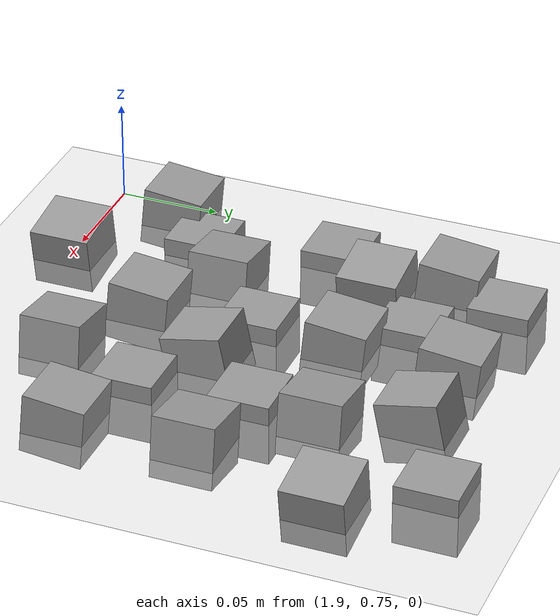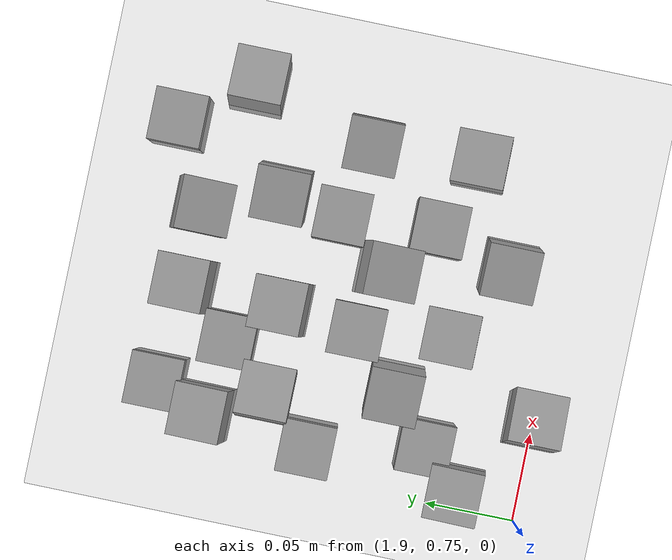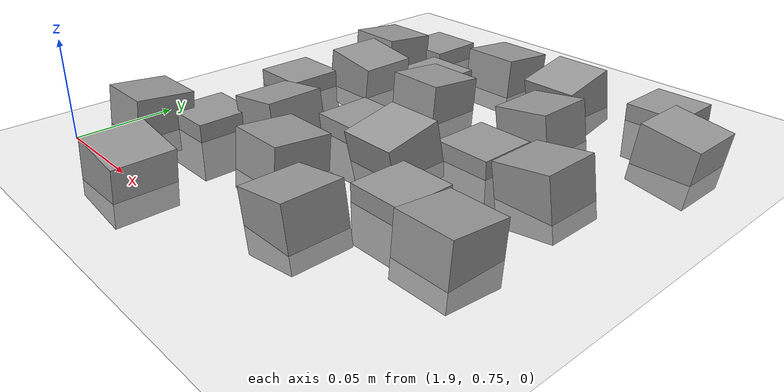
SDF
<sdf version="1.7">
 <world name="default">
  <model name="ground_plane">
   <static>1</static>
   <link name="link">
    <collision name="collision">
     <geometry><plane><normal>0 0 1</normal><size>100 100</size></plane></geometry>
     <surface><friction><ode><mu>100</mu><mu2>50</mu2></ode></friction></surface>
    </collision>
    <visual name="visual">
     <cast_shadows>0</cast_shadows>
     <geometry><plane><normal>0 0 1</normal><size>100 100</size></plane></geometry>
     <material>
      <script><uri>file://media/materials/scripts/gazebo.material</uri><name>Gazebo/Grey</name></script>
     </material>
    </visual>
   </link>
  </model>
  <model name="stone_road_5">
   <link name="link_0_clone_13">
    <inertial>
     <mass>1</mass>
     <inertia>
      <ixx>0.166667</ixx>
      <ixy>0</ixy>
      <ixz>0</ixz>
      <iyy>0.166667</iyy>
      <iyz>0</iyz>
      <izz>0.166667</izz>
     </inertia>
    </inertial>
    <pose>0.107601 -0.134881 0.003778 0.2 -0 0</pose>
    <kinematic>1</kinematic>
    <visual name="visual">
     <geometry><box><size>0.03 0.03 0.03</size></box></geometry>
     <material>
      <lighting>1</lighting>
      <script><uri>file://media/materials/scripts/gazebo.material</uri><name>Gazebo/Grey</name></script>
      <shader type="pixel"><normal_map>__default__</normal_map></shader>
      <ambient>0.3 0.3 0.3 1</ambient>
      <diffuse>0.7 0.7 0.7 1</diffuse>
      <specular>0.01 0.01 0.01 1</specular>
      <emissive>0 0 0 1</emissive>
     </material>
    </visual>
    <collision name="collision">
     <geometry><box><size>0.03 0.03 0.03</size></box></geometry>
     <surface>
      <friction>
       <ode><mu>1</mu><mu2>1</mu2><fdir1>0 0 0</fdir1><slip1>0</slip1><slip2>0</slip2></ode>
       <torsional>
        <coefficient>1</coefficient>
        <patch_radius>0</patch_radius>
        <surface_radius>0</surface_radius>
        <use_patch_radius>1</use_patch_radius>
        <ode><slip>0</slip></ode>
       </torsional>
      </friction>
      <bounce><restitution_coefficient>0</restitution_coefficient><threshold>1e+06</threshold></bounce>
      <contact>
       <collide_without_contact>0</collide_without_contact>
       <collide_without_contact_bitmask>1</collide_without_contact_bitmask>
       <collide_bitmask>1</collide_bitmask>
       <ode>
        <soft_cfm>0</soft_cfm>
        <soft_erp>0.2</soft_erp>
        <kp>1e+13</kp>
        <kd>1</kd>
        <max_vel>0.01</max_vel>
        <min_depth>0</min_depth>
       </ode>
       <bullet>
        <split_impulse>1</split_impulse>
        <split_impulse_penetration_threshold>-0.01</split_impulse_penetration_threshold>
        <soft_cfm>0</soft_cfm>
        <soft_erp>0.2</soft_erp>
        <kp>1e+13</kp>
        <kd>1</kd>
       </bullet>
      </contact>
     </surface>
    </collision>
   </link>
   <link name="link_0_clone_2_clone_0">
    <inertial>
     <mass>1</mass>
     <inertia>
      <ixx>0.166667</ixx>
      <ixy>0</ixy>
      <ixz>0</ixz>
      <iyy>0.166667</iyy>
      <iyz>0</iyz>
      <izz>0.166667</izz>
     </inertia>
    </inertial>
    <pose>0.026852 -0.0813 0.003778 0 0.15 0</pose>
    <kinematic>1</kinematic>
    <visual name="visual">
     <geometry><box><size>0.03 0.03 0.03</size></box></geometry>
     <material>
      <lighting>1</lighting>
      <script><uri>file://media/materials/scripts/gazebo.material</uri><name>Gazebo/Grey</name></script>
      <shader type="pixel"><normal_map>__default__</normal_map></shader>
      <ambient>0.3 0.3 0.3 1</ambient>
      <diffuse>0.7 0.7 0.7 1</diffuse>
      <specular>0.01 0.01 0.01 1</specular>
      <emissive>0 0 0 1</emissive>
     </material>
    </visual>
    <collision name="collision">
     <geometry><box><size>0.03 0.03 0.03</size></box></geometry>
     <surface>
      <friction>
       <ode><mu>1</mu><mu2>1</mu2><fdir1>0 0 0</fdir1><slip1>0</slip1><slip2>0</slip2></ode>
       <torsional>
        <coefficient>1</coefficient>
        <patch_radius>0</patch_radius>
        <surface_radius>0</surface_radius>
        <use_patch_radius>1</use_patch_radius>
        <ode><slip>0</slip></ode>
       </torsional>
      </friction>
      <bounce><restitution_coefficient>0</restitution_coefficient><threshold>1e+06</threshold></bounce>
      <contact>
       <collide_without_contact>0</collide_without_contact>
       <collide_without_contact_bitmask>1</collide_without_contact_bitmask>
       <collide_bitmask>1</collide_bitmask>
       <ode>
        <soft_cfm>0</soft_cfm>
        <soft_erp>0.2</soft_erp>
        <kp>1e+13</kp>
        <kd>1</kd>
        <max_vel>0.01</max_vel>
        <min_depth>0</min_depth>
       </ode>
       <bullet>
        <split_impulse>1</split_impulse>
        <split_impulse_penetration_threshold>-0.01</split_impulse_penetration_threshold>
        <soft_cfm>0</soft_cfm>
        <soft_erp>0.2</soft_erp>
        <kp>1e+13</kp>
        <kd>1</kd>
       </bullet>
      </contact>
     </surface>
    </collision>
   </link>
   <link name="link_0_clone_2_clone_2_clone_13_clone_clone_10">
    <inertial>
     <mass>1</mass>
     <inertia>
      <ixx>0.166667</ixx>
      <ixy>0</ixy>
      <ixz>0</ixz>
      <iyy>0.166667</iyy>
      <iyz>0</iyz>
      <izz>0.166667</izz>
     </inertia>
    </inertial>
    <pose>-0.006825 -0.196489 0.003778 -0.1 0 0</pose>
    <kinematic>1</kinematic>
    <visual name="visual">
     <geometry><box><size>0.03 0.03 0.03</size></box></geometry>
     <material>
      <lighting>1</lighting>
      <script><uri>file://media/materials/scripts/gazebo.material</uri><name>Gazebo/Grey</name></script>
      <shader type="pixel"><normal_map>__default__</normal_map></shader>
      <ambient>0.3 0.3 0.3 1</ambient>
      <diffuse>0.7 0.7 0.7 1</diffuse>
      <specular>0.01 0.01 0.01 1</specular>
      <emissive>0 0 0 1</emissive>
     </material>
    </visual>
    <collision name="collision">
     <geometry><box><size>0.03 0.03 0.03</size></box></geometry>
     <surface>
      <friction>
       <ode><mu>1</mu><mu2>1</mu2><fdir1>0 0 0</fdir1><slip1>0</slip1><slip2>0</slip2></ode>
       <torsional>
        <coefficient>1</coefficient>
        <patch_radius>0</patch_radius>
        <surface_radius>0</surface_radius>
        <use_patch_radius>1</use_patch_radius>
        <ode><slip>0</slip></ode>
       </torsional>
      </friction>
      <bounce><restitution_coefficient>0</restitution_coefficient><threshold>1e+06</threshold></bounce>
      <contact>
       <collide_without_contact>0</collide_without_contact>
       <collide_without_contact_bitmask>1</collide_without_contact_bitmask>
       <collide_bitmask>1</collide_bitmask>
       <ode>
        <soft_cfm>0</soft_cfm>
        <soft_erp>0.2</soft_erp>
        <kp>1e+13</kp>
        <kd>1</kd>
        <max_vel>0.01</max_vel>
        <min_depth>0</min_depth>
       </ode>
       <bullet>
        <split_impulse>1</split_impulse>
        <split_impulse_penetration_threshold>-0.01</split_impulse_penetration_threshold>
        <soft_cfm>0</soft_cfm>
        <soft_erp>0.2</soft_erp>
        <kp>1e+13</kp>
        <kd>1</kd>
       </bullet>
      </contact>
     </surface>
    </collision>
   </link>
   <link name="link_0_clone_2_clone_2_clone_13_clone_clone_11">
    <inertial>
     <mass>1</mass>
     <inertia>
      <ixx>0.166667</ixx>
      <ixy>0</ixy>
      <ixz>0</ixz>
      <iyy>0.166667</iyy>
      <iyz>0</iyz>
      <izz>0.166667</izz>
     </inertia>
    </inertial>
    <pose>0.178889 -0.173779 0.003778 -0.1 0 0</pose>
    <kinematic>1</kinematic>
    <visual name="visual">
     <geometry><box><size>0.03 0.03 0.03</size></box></geometry>
     <material>
      <lighting>1</lighting>
      <script><uri>file://media/materials/scripts/gazebo.material</uri><name>Gazebo/Grey</name></script>
      <shader type="pixel"><normal_map>__default__</normal_map></shader>
      <ambient>0.3 0.3 0.3 1</ambient>
      <diffuse>0.7 0.7 0.7 1</diffuse>
      <specular>0.01 0.01 0.01 1</specular>
      <emissive>0 0 0 1</emissive>
     </material>
    </visual>
    <collision name="collision">
     <geometry><box><size>0.03 0.03 0.03</size></box></geometry>
     <surface>
      <friction>
       <ode><mu>1</mu><mu2>1</mu2><fdir1>0 0 0</fdir1><slip1>0</slip1><slip2>0</slip2></ode>
       <torsional>
        <coefficient>1</coefficient>
        <patch_radius>0</patch_radius>
        <surface_radius>0</surface_radius>
        <use_patch_radius>1</use_patch_radius>
        <ode><slip>0</slip></ode>
       </torsional>
      </friction>
      <bounce><restitution_coefficient>0</restitution_coefficient><threshold>1e+06</threshold></bounce>
      <contact>
       <collide_without_contact>0</collide_without_contact>
       <collide_without_contact_bitmask>1</collide_without_contact_bitmask>
       <collide_bitmask>1</collide_bitmask>
       <ode>
        <soft_cfm>0</soft_cfm>
        <soft_erp>0.2</soft_erp>
        <kp>1e+13</kp>
        <kd>1</kd>
        <max_vel>0.01</max_vel>
        <min_depth>0</min_depth>
       </ode>
       <bullet>
        <split_impulse>1</split_impulse>
        <split_impulse_penetration_threshold>-0.01</split_impulse_penetration_threshold>
        <soft_cfm>0</soft_cfm>
        <soft_erp>0.2</soft_erp>
        <kp>1e+13</kp>
        <kd>1</kd>
       </bullet>
      </contact>
     </surface>
    </collision>
   </link>
   <link name="link_0_clone_2_clone_2_clone_13_clone_clone_12">
    <inertial>
     <mass>1</mass>
     <inertia>
      <ixx>0.166667</ixx>
      <ixy>0</ixy>
      <ixz>0</ixz>
      <iyy>0.166667</iyy>
      <iyz>0</iyz>
      <izz>0.166667</izz>
     </inertia>
    </inertial>
    <pose>0.078701 -0.177208 0.003778 -0.1 0 0</pose>
    <kinematic>1</kinematic>
    <visual name="visual">
     <geometry><box><size>0.03 0.03 0.03</size></box></geometry>
     <material>
      <lighting>1</lighting>
      <script><uri>file://media/materials/scripts/gazebo.material</uri><name>Gazebo/Grey</name></script>
      <shader type="pixel"><normal_map>__default__</normal_map></shader>
      <ambient>0.3 0.3 0.3 1</ambient>
      <diffuse>0.7 0.7 0.7 1</diffuse>
      <specular>0.01 0.01 0.01 1</specular>
      <emissive>0 0 0 1</emissive>
     </material>
    </visual>
    <collision name="collision">
     <geometry><box><size>0.03 0.03 0.03</size></box></geometry>
     <surface>
      <friction>
       <ode><mu>1</mu><mu2>1</mu2><fdir1>0 0 0</fdir1><slip1>0</slip1><slip2>0</slip2></ode>
       <torsional>
        <coefficient>1</coefficient>
        <patch_radius>0</patch_radius>
        <surface_radius>0</surface_radius>
        <use_patch_radius>1</use_patch_radius>
        <ode><slip>0</slip></ode>
       </torsional>
      </friction>
      <bounce><restitution_coefficient>0</restitution_coefficient><threshold>1e+06</threshold></bounce>
      <contact>
       <collide_without_contact>0</collide_without_contact>
       <collide_without_contact_bitmask>1</collide_without_contact_bitmask>
       <collide_bitmask>1</collide_bitmask>
       <ode>
        <soft_cfm>0</soft_cfm>
        <soft_erp>0.2</soft_erp>
        <kp>1e+13</kp>
        <kd>1</kd>
        <max_vel>0.01</max_vel>
        <min_depth>0</min_depth>
       </ode>
       <bullet>
        <split_impulse>1</split_impulse>
        <split_impulse_penetration_threshold>-0.01</split_impulse_penetration_threshold>
        <soft_cfm>0</soft_cfm>
        <soft_erp>0.2</soft_erp>
        <kp>1e+13</kp>
        <kd>1</kd>
       </bullet>
      </contact>
     </surface>
    </collision>
   </link>
   <link name="link_0_clone_2_clone_2_clone_13_clone_clone_16_clone_13">
    <inertial>
     <mass>1</mass>
     <inertia>
      <ixx>0.166667</ixx>
      <ixy>0</ixy>
      <ixz>0</ixz>
      <iyy>0.166667</iyy>
      <iyz>0</iyz>
      <izz>0.166667</izz>
     </inertia>
    </inertial>
    <pose>0.168013 -0.00203 -0.006222 0 -0 0</pose>
    <kinematic>1</kinematic>
    <visual name="visual">
     <geometry><box><size>0.03 0.03 0.03</size></box></geometry>
     <material>
      <lighting>1</lighting>
      <script><uri>file://media/materials/scripts/gazebo.material</uri><name>Gazebo/Grey</name></script>
      <shader type="pixel"><normal_map>__default__</normal_map></shader>
      <ambient>0.3 0.3 0.3 1</ambient>
      <diffuse>0.7 0.7 0.7 1</diffuse>
      <specular>0.01 0.01 0.01 1</specular>
      <emissive>0 0 0 1</emissive>
     </material>
    </visual>
    <collision name="collision">
     <geometry><box><size>0.03 0.03 0.03</size></box></geometry>
     <surface>
      <friction>
       <ode><mu>1</mu><mu2>1</mu2><fdir1>0 0 0</fdir1><slip1>0</slip1><slip2>0</slip2></ode>
       <torsional>
        <coefficient>1</coefficient>
        <patch_radius>0</patch_radius>
        <surface_radius>0</surface_radius>
        <use_patch_radius>1</use_patch_radius>
        <ode><slip>0</slip></ode>
       </torsional>
      </friction>
      <bounce><restitution_coefficient>0</restitution_coefficient><threshold>1e+06</threshold></bounce>
      <contact>
       <collide_without_contact>0</collide_without_contact>
       <collide_without_contact_bitmask>1</collide_without_contact_bitmask>
       <collide_bitmask>1</collide_bitmask>
       <ode>
        <soft_cfm>0</soft_cfm>
        <soft_erp>0.2</soft_erp>
        <kp>1e+13</kp>
        <kd>1</kd>
        <max_vel>0.01</max_vel>
        <min_depth>0</min_depth>
       </ode>
       <bullet>
        <split_impulse>1</split_impulse>
        <split_impulse_penetration_threshold>-0.01</split_impulse_penetration_threshold>
        <soft_cfm>0</soft_cfm>
        <soft_erp>0.2</soft_erp>
        <kp>1e+13</kp>
        <kd>1</kd>
       </bullet>
      </contact>
     </surface>
    </collision>
   </link>
   <link name="link_0_clone_2_clone_2_clone_13_clone_clone_16_clone_14">
    <inertial>
     <mass>1</mass>
     <inertia>
      <ixx>0.166667</ixx>
      <ixy>0</ixy>
      <ixz>0</ixz>
      <iyy>0.166667</iyy>
      <iyz>0</iyz>
      <izz>0.166667</izz>
     </inertia>
    </inertial>
    <pose>0.051911 -0.054424 -0.006222 0 -0 0</pose>
    <kinematic>1</kinematic>
    <visual name="visual">
     <geometry><box><size>0.03 0.03 0.03</size></box></geometry>
     <material>
      <lighting>1</lighting>
      <script><uri>file://media/materials/scripts/gazebo.material</uri><name>Gazebo/Grey</name></script>
      <shader type="pixel"><normal_map>__default__</normal_map></shader>
      <ambient>0.3 0.3 0.3 1</ambient>
      <diffuse>0.7 0.7 0.7 1</diffuse>
      <specular>0.01 0.01 0.01 1</specular>
      <emissive>0 0 0 1</emissive>
     </material>
    </visual>
    <collision name="collision">
     <geometry><box><size>0.03 0.03 0.03</size></box></geometry>
     <surface>
      <friction>
       <ode><mu>1</mu><mu2>1</mu2><fdir1>0 0 0</fdir1><slip1>0</slip1><slip2>0</slip2></ode>
       <torsional>
        <coefficient>1</coefficient>
        <patch_radius>0</patch_radius>
        <surface_radius>0</surface_radius>
        <use_patch_radius>1</use_patch_radius>
        <ode><slip>0</slip></ode>
       </torsional>
      </friction>
      <bounce><restitution_coefficient>0</restitution_coefficient><threshold>1e+06</threshold></bounce>
      <contact>
       <collide_without_contact>0</collide_without_contact>
       <collide_without_contact_bitmask>1</collide_without_contact_bitmask>
       <collide_bitmask>1</collide_bitmask>
       <ode>
        <soft_cfm>0</soft_cfm>
        <soft_erp>0.2</soft_erp>
        <kp>1e+13</kp>
        <kd>1</kd>
        <max_vel>0.01</max_vel>
        <min_depth>0</min_depth>
       </ode>
       <bullet>
        <split_impulse>1</split_impulse>
        <split_impulse_penetration_threshold>-0.01</split_impulse_penetration_threshold>
        <soft_cfm>0</soft_cfm>
        <soft_erp>0.2</soft_erp>
        <kp>1e+13</kp>
        <kd>1</kd>
       </bullet>
      </contact>
     </surface>
    </collision>
   </link>
   <link name="link_0_clone_2_clone_2_clone_13_clone_clone_16_clone_15">
    <inertial>
     <mass>1</mass>
     <inertia>
      <ixx>0.166667</ixx>
      <ixy>0</ixy>
      <ixz>0</ixz>
      <iyy>0.166667</iyy>
      <iyz>0</iyz>
      <izz>0.166667</izz>
     </inertia>
    </inertial>
    <pose>0.133032 -0.103459 -0.006222 0 -0 0</pose>
    <kinematic>1</kinematic>
    <visual name="visual">
     <geometry><box><size>0.03 0.03 0.03</size></box></geometry>
     <material>
      <lighting>1</lighting>
      <script><uri>file://media/materials/scripts/gazebo.material</uri><name>Gazebo/Grey</name></script>
      <shader type="pixel"><normal_map>__default__</normal_map></shader>
      <ambient>0.3 0.3 0.3 1</ambient>
      <diffuse>0.7 0.7 0.7 1</diffuse>
      <specular>0.01 0.01 0.01 1</specular>
      <emissive>0 0 0 1</emissive>
     </material>
    </visual>
    <collision name="collision">
     <geometry><box><size>0.03 0.03 0.03</size></box></geometry>
     <surface>
      <friction>
       <ode><mu>1</mu><mu2>1</mu2><fdir1>0 0 0</fdir1><slip1>0</slip1><slip2>0</slip2></ode>
       <torsional>
        <coefficient>1</coefficient>
        <patch_radius>0</patch_radius>
        <surface_radius>0</surface_radius>
        <use_patch_radius>1</use_patch_radius>
        <ode><slip>0</slip></ode>
       </torsional>
      </friction>
      <bounce><restitution_coefficient>0</restitution_coefficient><threshold>1e+06</threshold></bounce>
      <contact>
       <collide_without_contact>0</collide_without_contact>
       <collide_without_contact_bitmask>1</collide_without_contact_bitmask>
       <collide_bitmask>1</collide_bitmask>
       <ode>
        <soft_cfm>0</soft_cfm>
        <soft_erp>0.2</soft_erp>
        <kp>1e+13</kp>
        <kd>1</kd>
        <max_vel>0.01</max_vel>
        <min_depth>0</min_depth>
       </ode>
       <bullet>
        <split_impulse>1</split_impulse>
        <split_impulse_penetration_threshold>-0.01</split_impulse_penetration_threshold>
        <soft_cfm>0</soft_cfm>
        <soft_erp>0.2</soft_erp>
        <kp>1e+13</kp>
        <kd>1</kd>
       </bullet>
      </contact>
     </surface>
    </collision>
   </link>
   <link name="link_0_clone_2_clone_2_clone_13_clone_clone_16_clone_16">
    <inertial>
     <mass>1</mass>
     <inertia>
      <ixx>0.166667</ixx>
      <ixy>0</ixy>
      <ixz>0</ixz>
      <iyy>0.166667</iyy>
      <iyz>0</iyz>
      <izz>0.166667</izz>
     </inertia>
    </inertial>
    <pose>0.071475 -0.124425 -0.006222 0 -0 0</pose>
    <kinematic>1</kinematic>
    <visual name="visual">
     <geometry><box><size>0.03 0.03 0.03</size></box></geometry>
     <material>
      <lighting>1</lighting>
      <script><uri>file://media/materials/scripts/gazebo.material</uri><name>Gazebo/Grey</name></script>
      <shader type="pixel"><normal_map>__default__</normal_map></shader>
      <ambient>0.3 0.3 0.3 1</ambient>
      <diffuse>0.7 0.7 0.7 1</diffuse>
      <specular>0.01 0.01 0.01 1</specular>
      <emissive>0 0 0 1</emissive>
     </material>
    </visual>
    <collision name="collision">
     <geometry><box><size>0.03 0.03 0.03</size></box></geometry>
     <surface>
      <friction>
       <ode><mu>1</mu><mu2>1</mu2><fdir1>0 0 0</fdir1><slip1>0</slip1><slip2>0</slip2></ode>
       <torsional>
        <coefficient>1</coefficient>
        <patch_radius>0</patch_radius>
        <surface_radius>0</surface_radius>
        <use_patch_radius>1</use_patch_radius>
        <ode><slip>0</slip></ode>
       </torsional>
      </friction>
      <bounce><restitution_coefficient>0</restitution_coefficient><threshold>1e+06</threshold></bounce>
      <contact>
       <collide_without_contact>0</collide_without_contact>
       <collide_without_contact_bitmask>1</collide_without_contact_bitmask>
       <collide_bitmask>1</collide_bitmask>
       <ode>
        <soft_cfm>0</soft_cfm>
        <soft_erp>0.2</soft_erp>
        <kp>1e+13</kp>
        <kd>1</kd>
        <max_vel>0.01</max_vel>
        <min_depth>0</min_depth>
       </ode>
       <bullet>
        <split_impulse>1</split_impulse>
        <split_impulse_penetration_threshold>-0.01</split_impulse_penetration_threshold>
        <soft_cfm>0</soft_cfm>
        <soft_erp>0.2</soft_erp>
        <kp>1e+13</kp>
        <kd>1</kd>
       </bullet>
      </contact>
     </surface>
    </collision>
   </link>
   <link name="link_0_clone_2_clone_2_clone_13_clone_clone_16_clone_17">
    <inertial>
     <mass>1</mass>
     <inertia>
      <ixx>0.166667</ixx>
      <ixy>0</ixy>
      <ixz>0</ixz>
      <iyy>0.166667</iyy>
      <iyz>0</iyz>
      <izz>0.166667</izz>
     </inertia>
    </inertial>
    <pose>0.014877 -0.175392 -0.006222 0 -0 0</pose>
    <kinematic>1</kinematic>
    <visual name="visual">
     <geometry><box><size>0.03 0.03 0.03</size></box></geometry>
     <material>
      <lighting>1</lighting>
      <script><uri>file://media/materials/scripts/gazebo.material</uri><name>Gazebo/Grey</name></script>
      <shader type="pixel"><normal_map>__default__</normal_map></shader>
      <ambient>0.3 0.3 0.3 1</ambient>
      <diffuse>0.7 0.7 0.7 1</diffuse>
      <specular>0.01 0.01 0.01 1</specular>
      <emissive>0 0 0 1</emissive>
     </material>
    </visual>
    <collision name="collision">
     <geometry><box><size>0.03 0.03 0.03</size></box></geometry>
     <surface>
      <friction>
       <ode><mu>1</mu><mu2>1</mu2><fdir1>0 0 0</fdir1><slip1>0</slip1><slip2>0</slip2></ode>
       <torsional>
        <coefficient>1</coefficient>
        <patch_radius>0</patch_radius>
        <surface_radius>0</surface_radius>
        <use_patch_radius>1</use_patch_radius>
        <ode><slip>0</slip></ode>
       </torsional>
      </friction>
      <bounce><restitution_coefficient>0</restitution_coefficient><threshold>1e+06</threshold></bounce>
      <contact>
       <collide_without_contact>0</collide_without_contact>
       <collide_without_contact_bitmask>1</collide_without_contact_bitmask>
       <collide_bitmask>1</collide_bitmask>
       <ode>
        <soft_cfm>0</soft_cfm>
        <soft_erp>0.2</soft_erp>
        <kp>1e+13</kp>
        <kd>1</kd>
        <max_vel>0.01</max_vel>
        <min_depth>0</min_depth>
       </ode>
       <bullet>
        <split_impulse>1</split_impulse>
        <split_impulse_penetration_threshold>-0.01</split_impulse_penetration_threshold>
        <soft_cfm>0</soft_cfm>
        <soft_erp>0.2</soft_erp>
        <kp>1e+13</kp>
        <kd>1</kd>
       </bullet>
      </contact>
     </surface>
    </collision>
   </link>
   <link name="link_0_clone_2_clone_2_clone_13_clone_clone_16_clone_18">
    <inertial>
     <mass>1</mass>
     <inertia>
      <ixx>0.166667</ixx>
      <ixy>0</ixy>
      <ixz>0</ixz>
      <iyy>0.166667</iyy>
      <iyz>0</iyz>
      <izz>0.166667</izz>
     </inertia>
    </inertial>
    <pose>0.137197 -0.158693 -0.006222 0 -0 0</pose>
    <kinematic>1</kinematic>
    <visual name="visual">
     <geometry><box><size>0.03 0.03 0.03</size></box></geometry>
     <material>
      <lighting>1</lighting>
      <script><uri>file://media/materials/scripts/gazebo.material</uri><name>Gazebo/Grey</name></script>
      <shader type="pixel"><normal_map>__default__</normal_map></shader>
      <ambient>0.3 0.3 0.3 1</ambient>
      <diffuse>0.7 0.7 0.7 1</diffuse>
      <specular>0.01 0.01 0.01 1</specular>
      <emissive>0 0 0 1</emissive>
     </material>
    </visual>
    <collision name="collision">
     <geometry><box><size>0.03 0.03 0.03</size></box></geometry>
     <surface>
      <friction>
       <ode><mu>1</mu><mu2>1</mu2><fdir1>0 0 0</fdir1><slip1>0</slip1><slip2>0</slip2></ode>
       <torsional>
        <coefficient>1</coefficient>
        <patch_radius>0</patch_radius>
        <surface_radius>0</surface_radius>
        <use_patch_radius>1</use_patch_radius>
        <ode><slip>0</slip></ode>
       </torsional>
      </friction>
      <bounce><restitution_coefficient>0</restitution_coefficient><threshold>1e+06</threshold></bounce>
      <contact>
       <collide_without_contact>0</collide_without_contact>
       <collide_without_contact_bitmask>1</collide_without_contact_bitmask>
       <collide_bitmask>1</collide_bitmask>
       <ode>
        <soft_cfm>0</soft_cfm>
        <soft_erp>0.2</soft_erp>
        <kp>1e+13</kp>
        <kd>1</kd>
        <max_vel>0.01</max_vel>
        <min_depth>0</min_depth>
       </ode>
       <bullet>
        <split_impulse>1</split_impulse>
        <split_impulse_penetration_threshold>-0.01</split_impulse_penetration_threshold>
        <soft_cfm>0</soft_cfm>
        <soft_erp>0.2</soft_erp>
        <kp>1e+13</kp>
        <kd>1</kd>
       </bullet>
      </contact>
     </surface>
    </collision>
   </link>
   <link name="link_0_clone_2_clone_2_clone_13_clone_clone_16_clone_6">
    <inertial>
     <mass>1</mass>
     <inertia>
      <ixx>0.166667</ixx>
      <ixy>0</ixy>
      <ixz>0</ixz>
      <iyy>0.166667</iyy>
      <iyz>0</iyz>
      <izz>0.166667</izz>
     </inertia>
    </inertial>
    <pose>0.020774 -0.018727 -0.006222 0 -0 0</pose>
    <kinematic>1</kinematic>
    <visual name="visual">
     <geometry><box><size>0.03 0.03 0.03</size></box></geometry>
     <material>
      <lighting>1</lighting>
      <script><uri>file://media/materials/scripts/gazebo.material</uri><name>Gazebo/Grey</name></script>
      <shader type="pixel"><normal_map>__default__</normal_map></shader>
      <ambient>0.3 0.3 0.3 1</ambient>
      <diffuse>0.7 0.7 0.7 1</diffuse>
      <specular>0.01 0.01 0.01 1</specular>
      <emissive>0 0 0 1</emissive>
     </material>
    </visual>
    <collision name="collision">
     <geometry><box><size>0.03 0.03 0.03</size></box></geometry>
     <surface>
      <friction>
       <ode><mu>1</mu><mu2>1</mu2><fdir1>0 0 0</fdir1><slip1>0</slip1><slip2>0</slip2></ode>
       <torsional>
        <coefficient>1</coefficient>
        <patch_radius>0</patch_radius>
        <surface_radius>0</surface_radius>
        <use_patch_radius>1</use_patch_radius>
        <ode><slip>0</slip></ode>
       </torsional>
      </friction>
      <bounce><restitution_coefficient>0</restitution_coefficient><threshold>1e+06</threshold></bounce>
      <contact>
       <collide_without_contact>0</collide_without_contact>
       <collide_without_contact_bitmask>1</collide_without_contact_bitmask>
       <collide_bitmask>1</collide_bitmask>
       <ode>
        <soft_cfm>0</soft_cfm>
        <soft_erp>0.2</soft_erp>
        <kp>1e+13</kp>
        <kd>1</kd>
        <max_vel>0.01</max_vel>
        <min_depth>0</min_depth>
       </ode>
       <bullet>
        <split_impulse>1</split_impulse>
        <split_impulse_penetration_threshold>-0.01</split_impulse_penetration_threshold>
        <soft_cfm>0</soft_cfm>
        <soft_erp>0.2</soft_erp>
        <kp>1e+13</kp>
        <kd>1</kd>
       </bullet>
      </contact>
     </surface>
    </collision>
   </link>
   <link name="link_0_clone_2_clone_2_clone_13_clone_clone_16_clone_7">
    <inertial>
     <mass>1</mass>
     <inertia>
      <ixx>0.166667</ixx>
      <ixy>0</ixy>
      <ixz>0</ixz>
      <iyy>0.166667</iyy>
      <iyz>0</iyz>
      <izz>0.166667</izz>
     </inertia>
    </inertial>
    <pose>0.000883 -0.109959 -0.006222 0 -0 0</pose>
    <kinematic>1</kinematic>
    <visual name="visual">
     <geometry><box><size>0.03 0.03 0.03</size></box></geometry>
     <material>
      <lighting>1</lighting>
      <script><uri>file://media/materials/scripts/gazebo.material</uri><name>Gazebo/Grey</name></script>
      <shader type="pixel"><normal_map>__default__</normal_map></shader>
      <ambient>0.3 0.3 0.3 1</ambient>
      <diffuse>0.7 0.7 0.7 1</diffuse>
      <specular>0.01 0.01 0.01 1</specular>
      <emissive>0 0 0 1</emissive>
     </material>
    </visual>
    <collision name="collision">
     <geometry><box><size>0.03 0.03 0.03</size></box></geometry>
     <surface>
      <friction>
       <ode><mu>1</mu><mu2>1</mu2><fdir1>0 0 0</fdir1><slip1>0</slip1><slip2>0</slip2></ode>
       <torsional>
        <coefficient>1</coefficient>
        <patch_radius>0</patch_radius>
        <surface_radius>0</surface_radius>
        <use_patch_radius>1</use_patch_radius>
        <ode><slip>0</slip></ode>
       </torsional>
      </friction>
      <bounce><restitution_coefficient>0</restitution_coefficient><threshold>1e+06</threshold></bounce>
      <contact>
       <collide_without_contact>0</collide_without_contact>
       <collide_without_contact_bitmask>1</collide_without_contact_bitmask>
       <collide_bitmask>1</collide_bitmask>
       <ode>
        <soft_cfm>0</soft_cfm>
        <soft_erp>0.2</soft_erp>
        <kp>1e+13</kp>
        <kd>1</kd>
        <max_vel>0.01</max_vel>
        <min_depth>0</min_depth>
       </ode>
       <bullet>
        <split_impulse>1</split_impulse>
        <split_impulse_penetration_threshold>-0.01</split_impulse_penetration_threshold>
        <soft_cfm>0</soft_cfm>
        <soft_erp>0.2</soft_erp>
        <kp>1e+13</kp>
        <kd>1</kd>
       </bullet>
      </contact>
     </surface>
    </collision>
   </link>
   <link name="link_0_clone_2_clone_2_clone_13_clone_clone_4">
    <inertial>
     <mass>1</mass>
     <inertia>
      <ixx>0.166667</ixx>
      <ixy>0</ixy>
      <ixz>0</ixz>
      <iyy>0.166667</iyy>
      <iyz>0</iyz>
      <izz>0.166667</izz>
     </inertia>
    </inertial>
    <pose>0.078198 -0.024053 0.003778 -0.1 0 0</pose>
    <kinematic>1</kinematic>
    <visual name="visual">
     <geometry><box><size>0.03 0.03 0.03</size></box></geometry>
     <material>
      <lighting>1</lighting>
      <script><uri>file://media/materials/scripts/gazebo.material</uri><name>Gazebo/Grey</name></script>
      <shader type="pixel"><normal_map>__default__</normal_map></shader>
      <ambient>0.3 0.3 0.3 1</ambient>
      <diffuse>0.7 0.7 0.7 1</diffuse>
      <specular>0.01 0.01 0.01 1</specular>
      <emissive>0 0 0 1</emissive>
     </material>
    </visual>
    <collision name="collision">
     <geometry><box><size>0.03 0.03 0.03</size></box></geometry>
     <surface>
      <friction>
       <ode><mu>1</mu><mu2>1</mu2><fdir1>0 0 0</fdir1><slip1>0</slip1><slip2>0</slip2></ode>
       <torsional>
        <coefficient>1</coefficient>
        <patch_radius>0</patch_radius>
        <surface_radius>0</surface_radius>
        <use_patch_radius>1</use_patch_radius>
        <ode><slip>0</slip></ode>
       </torsional>
      </friction>
      <bounce><restitution_coefficient>0</restitution_coefficient><threshold>1e+06</threshold></bounce>
      <contact>
       <collide_without_contact>0</collide_without_contact>
       <collide_without_contact_bitmask>1</collide_without_contact_bitmask>
       <collide_bitmask>1</collide_bitmask>
       <ode>
        <soft_cfm>0</soft_cfm>
        <soft_erp>0.2</soft_erp>
        <kp>1e+13</kp>
        <kd>1</kd>
        <max_vel>0.01</max_vel>
        <min_depth>0</min_depth>
       </ode>
       <bullet>
        <split_impulse>1</split_impulse>
        <split_impulse_penetration_threshold>-0.01</split_impulse_penetration_threshold>
        <soft_cfm>0</soft_cfm>
        <soft_erp>0.2</soft_erp>
        <kp>1e+13</kp>
        <kd>1</kd>
       </bullet>
      </contact>
     </surface>
    </collision>
   </link>
   <link name="link_0_clone_2_clone_2_clone_13_clone_clone_5">
    <inertial>
     <mass>1</mass>
     <inertia>
      <ixx>0.166667</ixx>
      <ixy>0</ixy>
      <ixz>0</ixz>
      <iyy>0.166667</iyy>
      <iyz>0</iyz>
      <izz>0.166667</izz>
     </inertia>
    </inertial>
    <pose>0.076743 -0.079785 0.003778 -0.1 0 0</pose>
    <kinematic>1</kinematic>
    <visual name="visual">
     <geometry><box><size>0.03 0.03 0.03</size></box></geometry>
     <material>
      <lighting>1</lighting>
      <script><uri>file://media/materials/scripts/gazebo.material</uri><name>Gazebo/Grey</name></script>
      <shader type="pixel"><normal_map>__default__</normal_map></shader>
      <ambient>0.3 0.3 0.3 1</ambient>
      <diffuse>0.7 0.7 0.7 1</diffuse>
      <specular>0.01 0.01 0.01 1</specular>
      <emissive>0 0 0 1</emissive>
     </material>
    </visual>
    <collision name="collision">
     <geometry><box><size>0.03 0.03 0.03</size></box></geometry>
     <surface>
      <friction>
       <ode><mu>1</mu><mu2>1</mu2><fdir1>0 0 0</fdir1><slip1>0</slip1><slip2>0</slip2></ode>
       <torsional>
        <coefficient>1</coefficient>
        <patch_radius>0</patch_radius>
        <surface_radius>0</surface_radius>
        <use_patch_radius>1</use_patch_radius>
        <ode><slip>0</slip></ode>
       </torsional>
      </friction>
      <bounce><restitution_coefficient>0</restitution_coefficient><threshold>1e+06</threshold></bounce>
      <contact>
       <collide_without_contact>0</collide_without_contact>
       <collide_without_contact_bitmask>1</collide_without_contact_bitmask>
       <collide_bitmask>1</collide_bitmask>
       <ode>
        <soft_cfm>0</soft_cfm>
        <soft_erp>0.2</soft_erp>
        <kp>1e+13</kp>
        <kd>1</kd>
        <max_vel>0.01</max_vel>
        <min_depth>0</min_depth>
       </ode>
       <bullet>
        <split_impulse>1</split_impulse>
        <split_impulse_penetration_threshold>-0.01</split_impulse_penetration_threshold>
        <soft_cfm>0</soft_cfm>
        <soft_erp>0.2</soft_erp>
        <kp>1e+13</kp>
        <kd>1</kd>
       </bullet>
      </contact>
     </surface>
    </collision>
   </link>
   <link name="link_0_clone_2_clone_2_clone_13_clone_clone_6">
    <inertial>
     <mass>1</mass>
     <inertia>
      <ixx>0.166667</ixx>
      <ixy>0</ixy>
      <ixz>0</ixz>
      <iyy>0.166667</iyy>
      <iyz>0</iyz>
      <izz>0.166667</izz>
     </inertia>
    </inertial>
    <pose>0.009445 -0.048118 0.003778 -0.1 0 0</pose>
    <kinematic>1</kinematic>
    <visual name="visual">
     <geometry><box><size>0.03 0.03 0.03</size></box></geometry>
     <material>
      <lighting>1</lighting>
      <script><uri>file://media/materials/scripts/gazebo.material</uri><name>Gazebo/Grey</name></script>
      <shader type="pixel"><normal_map>__default__</normal_map></shader>
      <ambient>0.3 0.3 0.3 1</ambient>
      <diffuse>0.7 0.7 0.7 1</diffuse>
      <specular>0.01 0.01 0.01 1</specular>
      <emissive>0 0 0 1</emissive>
     </material>
    </visual>
    <collision name="collision">
     <geometry><box><size>0.03 0.03 0.03</size></box></geometry>
     <surface>
      <friction>
       <ode><mu>1</mu><mu2>1</mu2><fdir1>0 0 0</fdir1><slip1>0</slip1><slip2>0</slip2></ode>
       <torsional>
        <coefficient>1</coefficient>
        <patch_radius>0</patch_radius>
        <surface_radius>0</surface_radius>
        <use_patch_radius>1</use_patch_radius>
        <ode><slip>0</slip></ode>
       </torsional>
      </friction>
      <bounce><restitution_coefficient>0</restitution_coefficient><threshold>1e+06</threshold></bounce>
      <contact>
       <collide_without_contact>0</collide_without_contact>
       <collide_without_contact_bitmask>1</collide_without_contact_bitmask>
       <collide_bitmask>1</collide_bitmask>
       <ode>
        <soft_cfm>0</soft_cfm>
        <soft_erp>0.2</soft_erp>
        <kp>1e+13</kp>
        <kd>1</kd>
        <max_vel>0.01</max_vel>
        <min_depth>0</min_depth>
       </ode>
       <bullet>
        <split_impulse>1</split_impulse>
        <split_impulse_penetration_threshold>-0.01</split_impulse_penetration_threshold>
        <soft_cfm>0</soft_cfm>
        <soft_erp>0.2</soft_erp>
        <kp>1e+13</kp>
        <kd>1</kd>
       </bullet>
      </contact>
     </surface>
    </collision>
   </link>
   <link name="link_0_clone_2_clone_2_clone_4">
    <inertial>
     <mass>1</mass>
     <inertia>
      <ixx>0.166667</ixx>
      <ixy>0</ixy>
      <ixz>0</ixz>
      <iyy>0.166667</iyy>
      <iyz>0</iyz>
      <izz>0.166667</izz>
     </inertia>
    </inertial>
    <pose>0.042048 -0.151731 0.003778 0 -0.15 0</pose>
    <kinematic>1</kinematic>
    <visual name="visual">
     <geometry><box><size>0.03 0.03 0.03</size></box></geometry>
     <material>
      <lighting>1</lighting>
      <script><uri>file://media/materials/scripts/gazebo.material</uri><name>Gazebo/Grey</name></script>
      <shader type="pixel"><normal_map>__default__</normal_map></shader>
      <ambient>0.3 0.3 0.3 1</ambient>
      <diffuse>0.7 0.7 0.7 1</diffuse>
      <specular>0.01 0.01 0.01 1</specular>
      <emissive>0 0 0 1</emissive>
     </material>
    </visual>
    <collision name="collision">
     <geometry><box><size>0.03 0.03 0.03</size></box></geometry>
     <surface>
      <friction>
       <ode><mu>1</mu><mu2>1</mu2><fdir1>0 0 0</fdir1><slip1>0</slip1><slip2>0</slip2></ode>
       <torsional>
        <coefficient>1</coefficient>
        <patch_radius>0</patch_radius>
        <surface_radius>0</surface_radius>
        <use_patch_radius>1</use_patch_radius>
        <ode><slip>0</slip></ode>
       </torsional>
      </friction>
      <bounce><restitution_coefficient>0</restitution_coefficient><threshold>1e+06</threshold></bounce>
      <contact>
       <collide_without_contact>0</collide_without_contact>
       <collide_without_contact_bitmask>1</collide_without_contact_bitmask>
       <collide_bitmask>1</collide_bitmask>
       <ode>
        <soft_cfm>0</soft_cfm>
        <soft_erp>0.2</soft_erp>
        <kp>1e+13</kp>
        <kd>1</kd>
        <max_vel>0.01</max_vel>
        <min_depth>0</min_depth>
       </ode>
       <bullet>
        <split_impulse>1</split_impulse>
        <split_impulse_penetration_threshold>-0.01</split_impulse_penetration_threshold>
        <soft_cfm>0</soft_cfm>
        <soft_erp>0.2</soft_erp>
        <kp>1e+13</kp>
        <kd>1</kd>
       </bullet>
      </contact>
     </surface>
    </collision>
   </link>
   <link name="link_0_clone_2_clone_2_clone_5">
    <inertial>
     <mass>1</mass>
     <inertia>
      <ixx>0.166667</ixx>
      <ixy>0</ixy>
      <ixz>0</ixz>
      <iyy>0.166667</iyy>
      <iyz>0</iyz>
      <izz>0.166667</izz>
     </inertia>
    </inertial>
    <pose>0.13842 -0.067468 0.003778 0 -0.15 0</pose>
    <kinematic>1</kinematic>
    <visual name="visual">
     <geometry><box><size>0.03 0.03 0.03</size></box></geometry>
     <material>
      <lighting>1</lighting>
      <script><uri>file://media/materials/scripts/gazebo.material</uri><name>Gazebo/Grey</name></script>
      <shader type="pixel"><normal_map>__default__</normal_map></shader>
      <ambient>0.3 0.3 0.3 1</ambient>
      <diffuse>0.7 0.7 0.7 1</diffuse>
      <specular>0.01 0.01 0.01 1</specular>
      <emissive>0 0 0 1</emissive>
     </material>
    </visual>
    <collision name="collision">
     <geometry><box><size>0.03 0.03 0.03</size></box></geometry>
     <surface>
      <friction>
       <ode><mu>1</mu><mu2>1</mu2><fdir1>0 0 0</fdir1><slip1>0</slip1><slip2>0</slip2></ode>
       <torsional>
        <coefficient>1</coefficient>
        <patch_radius>0</patch_radius>
        <surface_radius>0</surface_radius>
        <use_patch_radius>1</use_patch_radius>
        <ode><slip>0</slip></ode>
       </torsional>
      </friction>
      <bounce><restitution_coefficient>0</restitution_coefficient><threshold>1e+06</threshold></bounce>
      <contact>
       <collide_without_contact>0</collide_without_contact>
       <collide_without_contact_bitmask>1</collide_without_contact_bitmask>
       <collide_bitmask>1</collide_bitmask>
       <ode>
        <soft_cfm>0</soft_cfm>
        <soft_erp>0.2</soft_erp>
        <kp>1e+13</kp>
        <kd>1</kd>
        <max_vel>0.01</max_vel>
        <min_depth>0</min_depth>
       </ode>
       <bullet>
        <split_impulse>1</split_impulse>
        <split_impulse_penetration_threshold>-0.01</split_impulse_penetration_threshold>
        <soft_cfm>0</soft_cfm>
        <soft_erp>0.2</soft_erp>
        <kp>1e+13</kp>
        <kd>1</kd>
       </bullet>
      </contact>
     </surface>
    </collision>
   </link>
   <link name="link_0_clone_2_clone_2_clone_7">
    <inertial>
     <mass>1</mass>
     <inertia>
      <ixx>0.166667</ixx>
      <ixy>0</ixy>
      <ixz>0</ixz>
      <iyy>0.166667</iyy>
      <iyz>0</iyz>
      <izz>0.166667</izz>
     </inertia>
    </inertial>
    <pose>0.175499 -0.112442 0.003778 0 -0.15 0</pose>
    <kinematic>1</kinematic>
    <visual name="visual">
     <geometry><box><size>0.03 0.03 0.03</size></box></geometry>
     <material>
      <lighting>1</lighting>
      <script><uri>file://media/materials/scripts/gazebo.material</uri><name>Gazebo/Grey</name></script>
      <shader type="pixel"><normal_map>__default__</normal_map></shader>
      <ambient>0.3 0.3 0.3 1</ambient>
      <diffuse>0.7 0.7 0.7 1</diffuse>
      <specular>0.01 0.01 0.01 1</specular>
      <emissive>0 0 0 1</emissive>
     </material>
    </visual>
    <collision name="collision">
     <geometry><box><size>0.03 0.03 0.03</size></box></geometry>
     <surface>
      <friction>
       <ode><mu>1</mu><mu2>1</mu2><fdir1>0 0 0</fdir1><slip1>0</slip1><slip2>0</slip2></ode>
       <torsional>
        <coefficient>1</coefficient>
        <patch_radius>0</patch_radius>
        <surface_radius>0</surface_radius>
        <use_patch_radius>1</use_patch_radius>
        <ode><slip>0</slip></ode>
       </torsional>
      </friction>
      <bounce><restitution_coefficient>0</restitution_coefficient><threshold>1e+06</threshold></bounce>
      <contact>
       <collide_without_contact>0</collide_without_contact>
       <collide_without_contact_bitmask>1</collide_without_contact_bitmask>
       <collide_bitmask>1</collide_bitmask>
       <ode>
        <soft_cfm>0</soft_cfm>
        <soft_erp>0.2</soft_erp>
        <kp>1e+13</kp>
        <kd>1</kd>
        <max_vel>0.01</max_vel>
        <min_depth>0</min_depth>
       </ode>
       <bullet>
        <split_impulse>1</split_impulse>
        <split_impulse_penetration_threshold>-0.01</split_impulse_penetration_threshold>
        <soft_cfm>0</soft_cfm>
        <soft_erp>0.2</soft_erp>
        <kp>1e+13</kp>
        <kd>1</kd>
       </bullet>
      </contact>
     </surface>
    </collision>
   </link>
   <link name="link_0_clone_2_clone_2_clone_8">
    <inertial>
     <mass>1</mass>
     <inertia>
      <ixx>0.166667</ixx>
      <ixy>0</ixy>
      <ixz>0</ixz>
      <iyy>0.166667</iyy>
      <iyz>0</iyz>
      <izz>0.166667</izz>
     </inertia>
    </inertial>
    <pose>0.122141 -0.201696 0.003778 0 -0.15 0</pose>
    <kinematic>1</kinematic>
    <visual name="visual">
     <geometry><box><size>0.03 0.03 0.03</size></box></geometry>
     <material>
      <lighting>1</lighting>
      <script><uri>file://media/materials/scripts/gazebo.material</uri><name>Gazebo/Grey</name></script>
      <shader type="pixel"><normal_map>__default__</normal_map></shader>
      <ambient>0.3 0.3 0.3 1</ambient>
      <diffuse>0.7 0.7 0.7 1</diffuse>
      <specular>0.01 0.01 0.01 1</specular>
      <emissive>0 0 0 1</emissive>
     </material>
    </visual>
    <collision name="collision">
     <geometry><box><size>0.03 0.03 0.03</size></box></geometry>
     <surface>
      <friction>
       <ode><mu>1</mu><mu2>1</mu2><fdir1>0 0 0</fdir1><slip1>0</slip1><slip2>0</slip2></ode>
       <torsional>
        <coefficient>1</coefficient>
        <patch_radius>0</patch_radius>
        <surface_radius>0</surface_radius>
        <use_patch_radius>1</use_patch_radius>
        <ode><slip>0</slip></ode>
       </torsional>
      </friction>
      <bounce><restitution_coefficient>0</restitution_coefficient><threshold>1e+06</threshold></bounce>
      <contact>
       <collide_without_contact>0</collide_without_contact>
       <collide_without_contact_bitmask>1</collide_without_contact_bitmask>
       <collide_bitmask>1</collide_bitmask>
       <ode>
        <soft_cfm>0</soft_cfm>
        <soft_erp>0.2</soft_erp>
        <kp>1e+13</kp>
        <kd>1</kd>
        <max_vel>0.01</max_vel>
        <min_depth>0</min_depth>
       </ode>
       <bullet>
        <split_impulse>1</split_impulse>
        <split_impulse_penetration_threshold>-0.01</split_impulse_penetration_threshold>
        <soft_cfm>0</soft_cfm>
        <soft_erp>0.2</soft_erp>
        <kp>1e+13</kp>
        <kd>1</kd>
       </bullet>
      </contact>
     </surface>
    </collision>
   </link>
   <link name="link_0_clone_2_clone_7">
    <inertial>
     <mass>1</mass>
     <inertia>
      <ixx>0.166667</ixx>
      <ixy>0</ixy>
      <ixz>0</ixz>
      <iyy>0.166667</iyy>
      <iyz>0</iyz>
      <izz>0.166667</izz>
     </inertia>
    </inertial>
    <pose>0.04255 -0.232691 0.003778 0 0.15 0</pose>
    <kinematic>1</kinematic>
    <visual name="visual">
     <geometry><box><size>0.03 0.03 0.03</size></box></geometry>
     <material>
      <lighting>1</lighting>
      <script><uri>file://media/materials/scripts/gazebo.material</uri><name>Gazebo/Grey</name></script>
      <shader type="pixel"><normal_map>__default__</normal_map></shader>
      <ambient>0.3 0.3 0.3 1</ambient>
      <diffuse>0.7 0.7 0.7 1</diffuse>
      <specular>0.01 0.01 0.01 1</specular>
      <emissive>0 0 0 1</emissive>
     </material>
    </visual>
    <collision name="collision">
     <geometry><box><size>0.03 0.03 0.03</size></box></geometry>
     <surface>
      <friction>
       <ode><mu>1</mu><mu2>1</mu2><fdir1>0 0 0</fdir1><slip1>0</slip1><slip2>0</slip2></ode>
       <torsional>
        <coefficient>1</coefficient>
        <patch_radius>0</patch_radius>
        <surface_radius>0</surface_radius>
        <use_patch_radius>1</use_patch_radius>
        <ode><slip>0</slip></ode>
       </torsional>
      </friction>
      <bounce><restitution_coefficient>0</restitution_coefficient><threshold>1e+06</threshold></bounce>
      <contact>
       <collide_without_contact>0</collide_without_contact>
       <collide_without_contact_bitmask>1</collide_without_contact_bitmask>
       <collide_bitmask>1</collide_bitmask>
       <ode>
        <soft_cfm>0</soft_cfm>
        <soft_erp>0.2</soft_erp>
        <kp>1e+13</kp>
        <kd>1</kd>
        <max_vel>0.01</max_vel>
        <min_depth>0</min_depth>
       </ode>
       <bullet>
        <split_impulse>1</split_impulse>
        <split_impulse_penetration_threshold>-0.01</split_impulse_penetration_threshold>
        <soft_cfm>0</soft_cfm>
        <soft_erp>0.2</soft_erp>
        <kp>1e+13</kp>
        <kd>1</kd>
       </bullet>
      </contact>
     </surface>
    </collision>
   </link>
   <link name="link_0_clone_2_clone_8">
    <inertial>
     <mass>1</mass>
     <inertia>
      <ixx>0.166667</ixx>
      <ixy>0</ixy>
      <ixz>0</ixz>
      <iyy>0.166667</iyy>
      <iyz>0</iyz>
      <izz>0.166667</izz>
     </inertia>
    </inertial>
    <pose>0.197388 -0.042712 0.003778 0 0.15 0</pose>
    <kinematic>1</kinematic>
    <visual name="visual">
     <geometry><box><size>0.03 0.03 0.03</size></box></geometry>
     <material>
      <lighting>1</lighting>
      <script><uri>file://media/materials/scripts/gazebo.material</uri><name>Gazebo/Grey</name></script>
      <shader type="pixel"><normal_map>__default__</normal_map></shader>
      <ambient>0.3 0.3 0.3 1</ambient>
      <diffuse>0.7 0.7 0.7 1</diffuse>
      <specular>0.01 0.01 0.01 1</specular>
      <emissive>0 0 0 1</emissive>
     </material>
    </visual>
    <collision name="collision">
     <geometry><box><size>0.03 0.03 0.03</size></box></geometry>
     <surface>
      <friction>
       <ode><mu>1</mu><mu2>1</mu2><fdir1>0 0 0</fdir1><slip1>0</slip1><slip2>0</slip2></ode>
       <torsional>
        <coefficient>1</coefficient>
        <patch_radius>0</patch_radius>
        <surface_radius>0</surface_radius>
        <use_patch_radius>1</use_patch_radius>
        <ode><slip>0</slip></ode>
       </torsional>
      </friction>
      <bounce><restitution_coefficient>0</restitution_coefficient><threshold>1e+06</threshold></bounce>
      <contact>
       <collide_without_contact>0</collide_without_contact>
       <collide_without_contact_bitmask>1</collide_without_contact_bitmask>
       <collide_bitmask>1</collide_bitmask>
       <ode>
        <soft_cfm>0</soft_cfm>
        <soft_erp>0.2</soft_erp>
        <kp>1e+13</kp>
        <kd>1</kd>
        <max_vel>0.01</max_vel>
        <min_depth>0</min_depth>
       </ode>
       <bullet>
        <split_impulse>1</split_impulse>
        <split_impulse_penetration_threshold>-0.01</split_impulse_penetration_threshold>
        <soft_cfm>0</soft_cfm>
        <soft_erp>0.2</soft_erp>
        <kp>1e+13</kp>
        <kd>1</kd>
       </bullet>
      </contact>
     </surface>
    </collision>
   </link>
   <link name="link_0_clone_9">
    <inertial>
     <mass>1</mass>
     <inertia>
      <ixx>0.166667</ixx>
      <ixy>0</ixy>
      <ixz>0</ixz>
      <iyy>0.166667</iyy>
      <iyz>0</iyz>
      <izz>0.166667</izz>
     </inertia>
    </inertial>
    <pose>0.122173 -0.025452 0.003778 0.2 -0 0</pose>
    <kinematic>1</kinematic>
    <visual name="visual">
     <geometry><box><size>0.03 0.03 0.03</size></box></geometry>
     <material>
      <lighting>1</lighting>
      <script><uri>file://media/materials/scripts/gazebo.material</uri><name>Gazebo/Grey</name></script>
      <shader type="pixel"><normal_map>__default__</normal_map></shader>
      <ambient>0.3 0.3 0.3 1</ambient>
      <diffuse>0.7 0.7 0.7 1</diffuse>
      <specular>0.01 0.01 0.01 1</specular>
      <emissive>0 0 0 1</emissive>
     </material>
    </visual>
    <collision name="collision">
     <geometry><box><size>0.03 0.03 0.03</size></box></geometry>
     <surface>
      <friction>
       <ode><mu>1</mu><mu2>1</mu2><fdir1>0 0 0</fdir1><slip1>0</slip1><slip2>0</slip2></ode>
       <torsional>
        <coefficient>1</coefficient>
        <patch_radius>0</patch_radius>
        <surface_radius>0</surface_radius>
        <use_patch_radius>1</use_patch_radius>
        <ode><slip>0</slip></ode>
       </torsional>
      </friction>
      <bounce><restitution_coefficient>0</restitution_coefficient><threshold>1e+06</threshold></bounce>
      <contact>
       <collide_without_contact>0</collide_without_contact>
       <collide_without_contact_bitmask>1</collide_without_contact_bitmask>
       <collide_bitmask>1</collide_bitmask>
       <ode>
        <soft_cfm>0</soft_cfm>
        <soft_erp>0.2</soft_erp>
        <kp>1e+13</kp>
        <kd>1</kd>
        <max_vel>0.01</max_vel>
        <min_depth>0</min_depth>
       </ode>
       <bullet>
        <split_impulse>1</split_impulse>
        <split_impulse_penetration_threshold>-0.01</split_impulse_penetration_threshold>
        <soft_cfm>0</soft_cfm>
        <soft_erp>0.2</soft_erp>
        <kp>1e+13</kp>
        <kd>1</kd>
       </bullet>
      </contact>
     </surface>
    </collision>
   </link>
   <static>0</static>
   <pose>1.91599 0.982306 -0 0 -0 0</pose>
  </model>
 </world>
</sdf>
